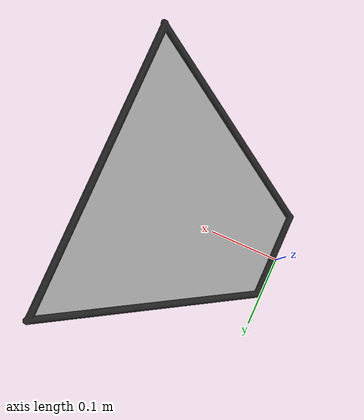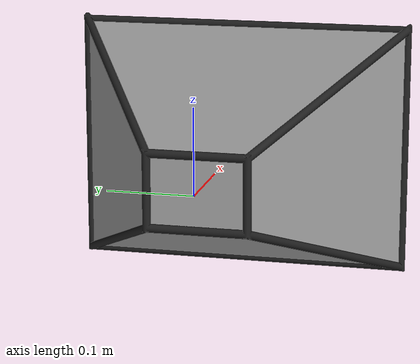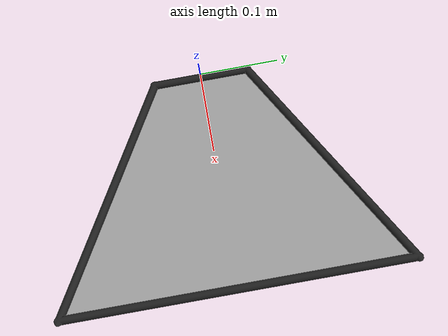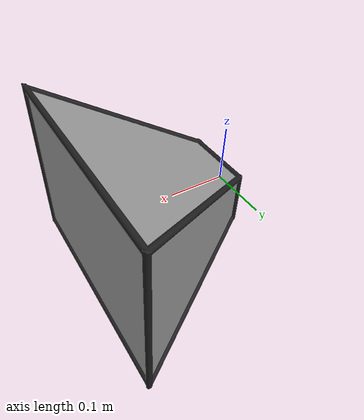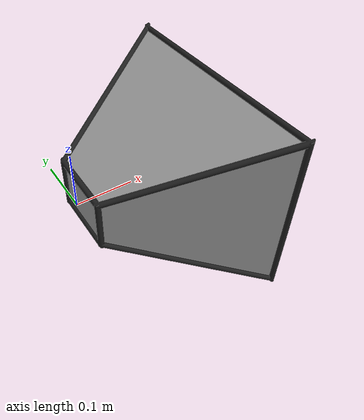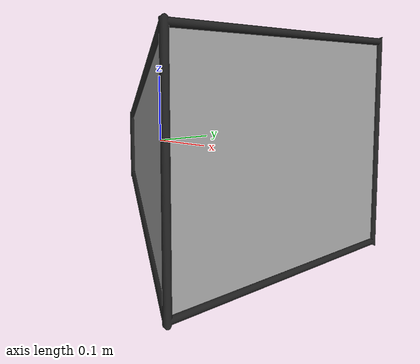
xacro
<?xml version="1.0" ?>
<robot name="localbot" xmlns:xacro="http://ros.org/wiki/xacro">
  <!--  Xacro description of turtlebot robot waffle pi used to play team hunt.-->
  <!--  Miguel Riem Oliveira-->
  <!--  PARI, November 2020-->

  <!--Args are local, properties are global, so we copy the values of the arguments to the properties-->
  <xacro:arg name="name" default="localbot" />
  <xacro:arg name="color" default="Orange" /> <!-- e.g. Red, Orange. Must exist in Gazebo/Colors and be defined in properties.xacro.-->

  <!--Properties are global so they can be viewed from inside the included xacros-->
  <!--  args are used with $(arg arg_name), properties are used as ${property_name}-->
  <xacro:property name="name" value="$(arg name)"/>
  <xacro:property name="color" value="$(arg color)"/>

  <!-- Include other files-->
  <xacro:include filename="$(find hector_xacro_tools)/urdf/inertia_tensors.urdf.xacro" />
  <xacro:include filename="$(find hector_xacro_tools)/urdf/joint_macros.urdf.xacro" />
  <xacro:include filename="$(find synfeal_bringup)/camera_description/urdf/localbot_kinect_camera_mp3d.urdf.xacro" />
  <xacro:property name="M_PI" value="3.14159265359"/>

  <xacro:include filename="$(find synfeal_bringup)/camera_description/urdf/localbot.gazebo.macro.xacro"/>
  <xacro:gazebo_macro color="$(arg color)" laser_visual="false" camera_visual="false" imu_visual="true"/>

  <material name="marker_orange">
    <color rgba="0.76 0.92 0.81 1"/>
  </material>

  <link name="base_footprint"/>

  <joint name="base_joint" type="fixed">
    <parent link="base_footprint"/>
    <child link="base_link" />
    <origin xyz="0.00 0.00 0.00" rpy="0 0 0"/>
  </joint>

  <link name="base_link">
  </link>

  <joint name="marker_joint" type="fixed">
    <parent link="base_link"/>
    <child link="marker_link" />
    <origin xyz="0.01 0.00 0.00" rpy="1.57 0 -1.57"/>
  </joint>

  <link name="marker_link">
    <visual>
      <transparency>1</transparency>
      <geometry>
        <mesh filename="package://synfeal_bringup/camera_description/meshes/cameraicon/frustrum_frame.obj"/>
      </geometry>
    </visual>
  </link>

  <joint name="marker_inside_joint" type="fixed">
    <parent link="marker_link"/>
    <child link="marker_inside_link" />
    <origin xyz="0.00 0.00 0.00" rpy="0 0 0"/>
  </joint>

  <link name="marker_inside_link">
    <visual>
      <transparency>1</transparency>
      <geometry>
        <mesh filename="package://synfeal_bringup/camera_description/meshes/cameraicon/frustrum.obj"/>
      </geometry>
    </visual>
  </link>

  <gazebo reference="marker_link">
    <material>Gazebo/BlackTransparent</material>
  </gazebo>

  <gazebo reference="marker_inside_link">
    <material>Gazebo/GreyTransparent</material>
  </gazebo>

  <xacro:kinect_camera name='kinect' parent="base_link">
    <origin xyz="0.00 0.00 0.00" rpy="0 0.0 0" />
  </xacro:kinect_camera>

</robot>

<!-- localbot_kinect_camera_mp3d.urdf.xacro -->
<robot xmlns:xacro="http://www.ros.org/wiki/xacro">
    <xacro:include filename="$(find hector_xacro_tools)/urdf/inertia_tensors.urdf.xacro"/>
    <xacro:property name="M_PI" value="3.1415926535897931" />

    <material name="orange">
      <color rgba="0.8 0.4 0.0 1.0"/>
    </material>

    <xacro:macro name="kinect_camera_model" params="name parent *origin">
      <joint name="${name}_joint" type="fixed">
        <xacro:insert_block name="origin" />
        <parent link="${parent}"/>
        <child link="${name}_link"/>
      </joint>

      <link name="${name}_link">
        <xacro:inertial_sphere mass="0.01" diameter="0.07" />
        <visual>
          <origin xyz="0 0 0" rpy="0 0 0" />
          <geometry>
            <mesh filename="package://hector_sensors_description/meshes/kinect_camera/kinect_camera_simple.dae"/>
          </geometry>
          <material name="orange"/>
        </visual>
        <collision>
          <origin xyz="0 0 0" rpy="0 0 0" />
          <geometry>
            <mesh filename="package://hector_sensors_description/meshes/kinect_camera/kinect_camera_simple.stl"/>
          </geometry>
        </collision>
      </link>

      <joint name="${name}_depth_joint" type="fixed">
        <origin xyz="0.0 -0.02 0.0" rpy="0 0 0" />
        <parent link="${name}_link" />
        <child link="${name}_depth_frame"/>
      </joint>

      <link name="${name}_depth_frame"/>

      <joint name="${name}_depth_optical_joint" type="fixed">
        <origin xyz="0 0 0" rpy="${-M_PI/2} 0.0 ${-M_PI/2}" />
        <parent link="${name}_depth_frame" />
        <child link="${name}_depth_optical_frame"/>
      </joint>

      <link name="${name}_depth_optical_frame"/>

      <joint name="${name}_rgb_joint" type="fixed">
        <origin xyz="0.0 -0.0125 0.0" rpy="0 0 0" />
        <parent link="${name}_link" />
        <child link="${name}_rgb_frame"/>
      </joint>

      <link name="${name}_rgb_frame"/>

      <joint name="${name}_rgb_optical_joint" type="fixed">
        <origin xyz="0 0 0" rpy="${-M_PI/2} 0.0 ${-M_PI/2}" />
        <parent link="${name}_rgb_frame" />
        <child link="${name}_rgb_optical_frame"/>
      </joint>

      <link name="${name}_rgb_optical_frame"/>

    </xacro:macro>

    <xacro:macro name="kinect_camera" params="name parent *origin">
      <xacro:kinect_camera_model name="${name}" parent="${parent}">
        <xacro:insert_block name="origin" />
      </xacro:kinect_camera_model>

      <gazebo reference="${name}_depth_frame">
        <sensor type="depth" name="${name}">
          <update_rate>20</update_rate>
          <camera>
            <horizontal_fov>${60.0*pi/180.0}</horizontal_fov>
            <image>
              <format>B8G8R8</format>
              <width>640</width>
              <height>480</height>
            </image>
            <clip>
              <near>0.10</near>
              <far>15.0</far>
            </clip>
          </camera>
          <plugin name="${name}_camera_controller" filename="libgazebo_ros_openni_kinect.so">
            <imageTopicName>null</imageTopicName>
            <cameraInfoTopicName>null/camera_info</cameraInfoTopicName>
            <depthImageTopicName>${name}/depth/image_raw</depthImageTopicName>
            <depthImageCameraInfoTopicName>${name}/depth/camera_info</depthImageCameraInfoTopicName>
            <pointCloudTopicName>${name}/depth/points</pointCloudTopicName>
            <frameName>${name}_depth_optical_frame</frameName>
          </plugin>
        </sensor>
      </gazebo>

    <gazebo reference="${name}_rgb_frame">
            <sensor type="camera" name="${name}">
                <update_rate>20.0</update_rate>
                <camera>
                    <horizontal_fov>${60.0*pi/180.0}</horizontal_fov>
                    <image>
                        <format>B8G8R8</format>
                        <width>1280</width>
                        <height>1024</height>
                    </image>
                    <clip>
                        <near>0.10</near>
                        <far>15.0</far>
                    </clip>
                    <lens>
                      <intrinsics>
                        <fx>1069.12</fx>
                        <fy>1069.6</fy>
                        <cx>629.037</cx>
                        <cy>502.572</cy>
                        <s>0</s>
                      </intrinsics>
                    </lens>
                </camera>
                <plugin name="${name}}_rgb_camera_controller" filename="libgazebo_ros_camera.so">
                    <cameraName>${name}</cameraName>
                    <alwaysOn>true</alwaysOn>
                    <updateRate>20.0</updateRate>
                    <imageTopicName>rgb/image_raw</imageTopicName>
                    <cameraInfoTopicName>rgb/camera_info</cameraInfoTopicName>
                    <frameName>_rgb_optical_frame</frameName>
                    <!-- Apparently this is not used-->
                    <distortionK1>0.0569006</distortionK1>
                    <distortionK2>-0.237008</distortionK2>
                    <distortionK3>0.242359</distortionK3>
                    <distortionT1>0.00037144</distortionT1>
                    <distortionT2>-0.00051121</distortionT2>
                    <Cx>777</Cx>
                    <Cy>300</Cy>
                    <focalLength>1069.12</focalLength>
                    <!-- ^^^ https://github.com/ros-simulation/gazebo_ros_pkgs/blob/noetic-devel/gazebo_plugins/src/gazebo_ros_camera_utils.cpp#L517 -->

                </plugin>
            </sensor>
        </gazebo>
        </xacro:macro>

  </robot>
